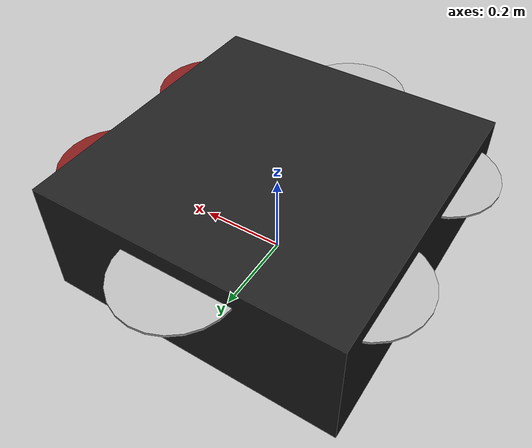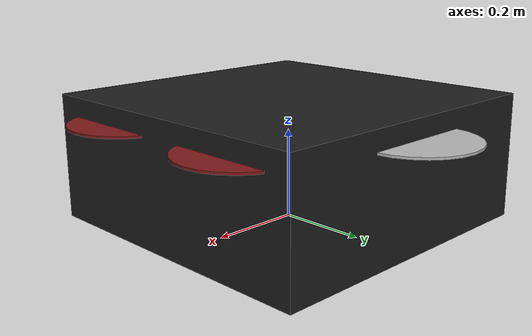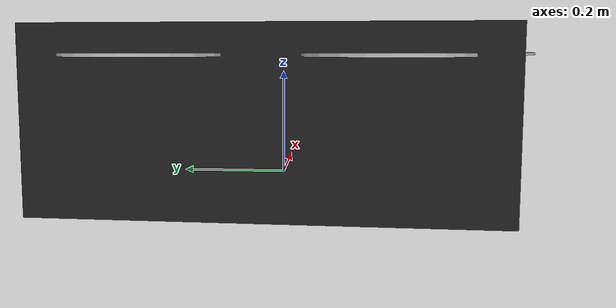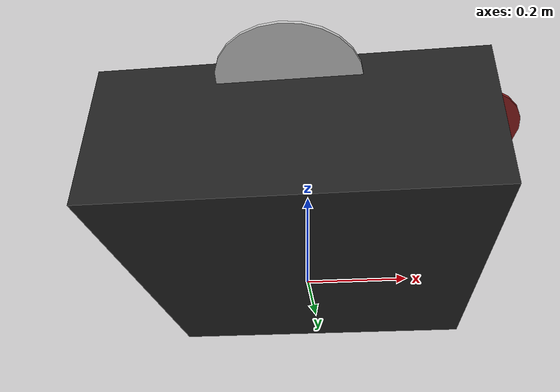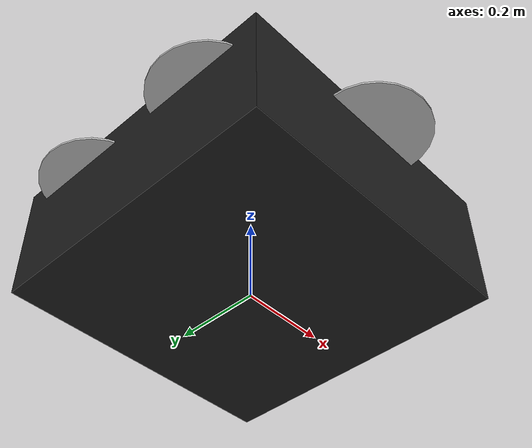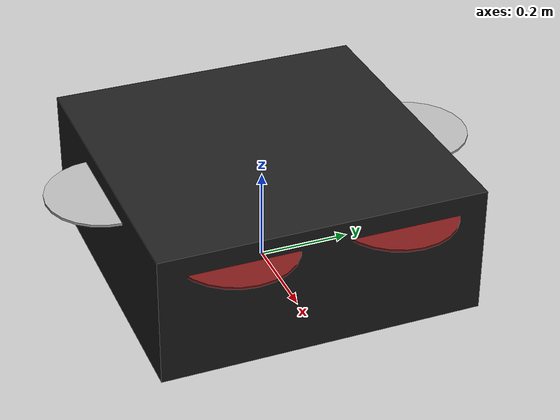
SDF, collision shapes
<?xml version='1.0'?>
<sdf version='1.9'>
  <model name='hexacopter_tarot680'>
    <pose>0 0 0 0 0 0</pose>
    <link name='base_link'>
      <velocity_decay>
          <linear>0.0</linear>
          <angular>0.0</angular>
      </velocity_decay>
      <inertial>
        <pose>0 0 0 0 0 0</pose>
        <mass>2.87</mass>
        <inertia>
          <ixx>0.05319</ixx>
          <ixy>0</ixy>
          <ixz>0</ixz>
          <iyy>0.06388</iyy>
          <iyz>0</iyz>
          <izz>0.02562</izz>
        </inertia>
      </inertial>
      <collision name='base_collision'>
        <pose>0 0 0.14 0 0 0</pose>
        <geometry>
          <box>
            <size>0.695 0.695 0.28</size>
          </box>
        </geometry>
        <surface>
          <contact>
            <ode>
              <max_vel>100.0</max_vel>
              <min_depth>0.001</min_depth>
            </ode>
          </contact>
          <friction>
            <ode>
              <mu>100000.0</mu>
              <mu2>100000.0</mu2>
            </ode>
          </friction>
        </surface>
      </collision>
      <visual name='base_visual'>
        <geometry>
          <mesh>
            <scale>1 1 1</scale>
            <uri>meshes/tarot680.stl</uri>
          </mesh>
        </geometry>
        <material>
          <script>
            <name>Gazebo/Black</name>
            <uri>file://media/materials/scripts/gazebo.material</uri>
          </script>
          <ambient>0 0 0 1</ambient>
          <diffuse>0.15 0.15 0.15 1</diffuse>
          <specular>0.7 0.7 0.7 1</specular>
          <emissive>0 0 0 1</emissive>
        </material>
      </visual>
    </link>
    <link name='imu_link'>
      <inertial>
        <pose>0 0 0 0 0 0</pose>
        <mass>0.15</mass>
        <inertia>
          <ixx>0.00001</ixx>
          <ixy>0</ixy>
          <ixz>0</ixz>
          <iyy>0.00002</iyy>
          <iyz>0</iyz>
          <izz>0.00002</izz>
        </inertia>
      </inertial>
      <sensor name="imu_sensor" type="imu">
        <pose degrees="true">0 0 0 180 0 0</pose>
        <always_on>1</always_on>
        <update_rate>1000.0</update_rate>
      </sensor>
    </link>
    <joint name='imu_joint' type='revolute'>
      <child>imu_link</child>
      <parent>base_link</parent>
      <axis>
        <xyz>0 0 1</xyz>
        <limit>
          <lower>0</lower>
          <upper>0</upper>
          <effort>0</effort>
          <velocity>0</velocity>
        </limit>
        <dynamics>
          <damping>1.0</damping>
        </dynamics>
      </axis>
    </joint>

    <!-- Rotor -->
    <!-- Front Right (CCW) -->
    <link name='rotor_4'>
      <pose>0.2966 -0.1712 0.235 0 0 0</pose>
      <inertial>
        <pose>0 0 0 0 0 0</pose>
        <mass>0.005</mass>
        <inertia>
          <ixx>9.75e-07</ixx>
          <ixy>0</ixy>
          <ixz>0</ixz>
          <iyy>0.000273104</iyy>
          <iyz>0</iyz>
          <izz>0.000274004</izz>
        </inertia>
      </inertial>
      <collision name='rotor_4_collision'>
        <pose>0 0 0 0 0 0</pose>
        <geometry>
          <cylinder>
            <length>0.005</length>
            <radius>0.128</radius>
          </cylinder>
        </geometry>
        <surface>
          <contact>
            <ode/>
          </contact>
          <friction>
            <ode/>
          </friction>
        </surface>
      </collision>
      <visual name='rotor_4_visual'>
        <pose>0 0 0 0 0 0</pose>
        <geometry>
          <mesh>
            <scale>1 1 1</scale>
            <uri>meshes/1340_ccw.dae</uri>
          </mesh>
        </geometry>
        <material>
          <ambient>0 0 0 1</ambient>
          <diffuse>0.5 0.1 0.1 1</diffuse>
          <specular>1 0.6 0.6 1</specular>
          <emissive>0.5 0 0 1</emissive>
        </material>
      </visual>
      <gravity>1</gravity>
      <velocity_decay/>
      <self_collide>0</self_collide>
    </link>
    <joint name='rotor_4_joint' type='revolute'>
      <child>rotor_4</child>
      <parent>base_link</parent>
      <axis>
        <xyz>0 0 1</xyz>
        <limit>
          <lower>-1e+16</lower>
          <upper>1e+16</upper>
        </limit>
        <dynamics>
          <damping>0.004</damping>
        </dynamics>
      </axis>
      <physics>
        <ode>
          <implicit_spring_damper>1</implicit_spring_damper>
        </ode>
      </physics>
    </joint>

    <!-- Front Left (CW) -->
    <link name='rotor_2'>
      <pose>0.2966 0.1712 0.235 0 0 0</pose>
      <inertial>
        <pose>0 0 0 0 0 0</pose>
        <mass>0.005</mass>
        <inertia>
          <ixx>9.75e-07</ixx>
          <ixy>0</ixy>
          <ixz>0</ixz>
          <iyy>0.000273104</iyy>
          <iyz>0</iyz>
          <izz>0.000274004</izz>
        </inertia>
      </inertial>
      <collision name='rotor_2_collision'>
        <pose>0 0 0 0 0 0</pose>
        <geometry>
          <cylinder>
            <length>0.005</length>
            <radius>0.128</radius>
          </cylinder>
        </geometry>
        <surface>
          <contact>
            <ode/>
          </contact>
          <friction>
            <ode/>
          </friction>
        </surface>
      </collision>
      <visual name='rotor_2_visual'>
        <pose>0 0 0 0 0 0</pose>
        <geometry>
          <mesh>
            <scale>1 1 1</scale>
            <uri>meshes/1340_cw.dae</uri>
          </mesh>
        </geometry>
        <material>
          <ambient>0 0 0 1</ambient>
          <diffuse>0.5 0.1 0.1 1</diffuse>
          <specular>1 0.6 0.6 1</specular>
          <emissive>0.5 0 0 1</emissive>
        </material>
      </visual>
      <gravity>1</gravity>
      <velocity_decay/>
      <self_collide>0</self_collide>
    </link>
    <joint name='rotor_2_joint' type='revolute'>
      <child>rotor_2</child>
      <parent>base_link</parent>
      <axis>
        <xyz>0 0 1</xyz>
        <limit>
          <lower>-1e+16</lower>
          <upper>1e+16</upper>
        </limit>
        <dynamics>
          <damping>0.004</damping>
        </dynamics>
      </axis>
      <physics>
        <ode>
          <implicit_spring_damper>1</implicit_spring_damper>
        </ode>
      </physics>
    </joint>

    <!-- Back Right (CCW) -->
    <link name='rotor_3'>
      <pose>-0.2966 -0.1712 0.235 0 0 0</pose>
      <inertial>
        <pose>0 0 0 0 0 0</pose>
        <mass>0.005</mass>
        <inertia>
          <ixx>9.75e-07</ixx>
          <ixy>0</ixy>
          <ixz>0</ixz>
          <iyy>0.000273104</iyy>
          <iyz>0</iyz>
          <izz>0.000274004</izz>
        </inertia>
      </inertial>
      <collision name='rotor_3_collision'>
        <pose>0 0 0 0 0 0</pose>
        <geometry>
          <cylinder>
            <length>0.005</length>
            <radius>0.128</radius>
          </cylinder>
        </geometry>
        <surface>
          <contact>
            <ode/>
          </contact>
          <friction>
            <ode/>
          </friction>
        </surface>
      </collision>
      <visual name='rotor_3_visual'>
        <pose>0 0 0.0 0 0 0</pose>
        <geometry>
          <mesh>
            <scale>1 1 1</scale>
            <uri>meshes/1340_ccw.dae</uri>
          </mesh>
        </geometry>
      </visual>
      <gravity>1</gravity>
      <velocity_decay/>
      <self_collide>0</self_collide>
    </link>
    <joint name='rotor_3_joint' type='revolute'>
      <child>rotor_3</child>
      <parent>base_link</parent>
      <axis>
        <xyz>0 0 1</xyz>
        <limit>
          <lower>-1e+16</lower>
          <upper>1e+16</upper>
        </limit>
        <dynamics>
          <damping>0.004</damping>
        </dynamics>
      </axis>
      <physics>
        <ode>
          <implicit_spring_damper>1</implicit_spring_damper>
        </ode>
      </physics>
    </joint>

    <!-- Middle Right (CW) -->
    <link name='rotor_0'>
      <pose>0 -0.3425 0.235 0 0 0</pose>
      <inertial>
        <pose>0 0 0 0 0 0</pose>
        <mass>0.005</mass>
        <inertia>
          <ixx>9.75e-07</ixx>
          <ixy>0</ixy>
          <ixz>0</ixz>
          <iyy>0.000273104</iyy>
          <iyz>0</iyz>
          <izz>0.000274004</izz>
        </inertia>
      </inertial>
      <collision name='rotor_0_collision'>
        <pose>0 0 0 0 0 0</pose>
        <geometry>
          <cylinder>
            <length>0.005</length>
            <radius>0.128</radius>
          </cylinder>
        </geometry>
        <surface>
          <contact>
            <ode/>
          </contact>
          <friction>
            <ode/>
          </friction>
        </surface>
      </collision>
      <visual name='rotor_0_visual'>
        <pose>0 0 0 0 0 0</pose>
        <geometry>
          <mesh>
            <scale>1 1 1</scale>
            <uri>meshes/1340_cw.dae</uri>
          </mesh>
        </geometry>
      </visual>
      <gravity>1</gravity>
      <velocity_decay/>
      <self_collide>0</self_collide>
    </link>
    <joint name='rotor_0_joint' type='revolute'>
      <child>rotor_0</child>
      <parent>base_link</parent>
      <axis>
        <xyz>0 0 1</xyz>
        <limit>
          <lower>-1e+16</lower>
          <upper>1e+16</upper>
        </limit>
        <dynamics>
          <damping>0.004</damping>
        </dynamics>
      </axis>
      <physics>
        <ode>
          <implicit_spring_damper>1</implicit_spring_damper>
        </ode>
      </physics>
    </joint>

    <!-- Middle Left (CCW) -->
    <link name='rotor_1'>
      <pose>0 0.3425 0.235 0 0 0</pose>
      <inertial>
        <pose>0 0 0 0 0 0</pose>
        <mass>0.005</mass>
        <inertia>
          <ixx>9.75e-07</ixx>
          <ixy>0</ixy>
          <ixz>0</ixz>
          <iyy>0.000273104</iyy>
          <iyz>0</iyz>
          <izz>0.000274004</izz>
        </inertia>
      </inertial>
      <collision name='rotor_1_collision'>
        <pose>0 0 0 0 0 0</pose>
        <geometry>
          <cylinder>
            <length>0.005</length>
            <radius>0.128</radius>
          </cylinder>
        </geometry>
        <surface>
          <contact>
            <ode/>
          </contact>
          <friction>
            <ode/>
          </friction>
        </surface>
      </collision>
      <visual name='rotor_1_visual'>
        <pose>0 0 0 0 0 0</pose>
        <geometry>
          <mesh>
            <scale>1 1 1</scale>
            <uri>meshes/1340_ccw.dae</uri>
          </mesh>
        </geometry>
      </visual>
      <gravity>1</gravity>
      <velocity_decay/>
      <self_collide>0</self_collide>
    </link>
    <joint name='rotor_1_joint' type='revolute'>
      <child>rotor_1</child>
      <parent>base_link</parent>
      <axis>
        <xyz>0 0 1</xyz>
        <limit>
          <lower>-1e+16</lower>
          <upper>1e+16</upper>
        </limit>
        <dynamics>
          <damping>0.004</damping>
        </dynamics>
      </axis>
      <physics>
        <ode>
          <implicit_spring_damper>1</implicit_spring_damper>
        </ode>
      </physics>
    </joint>

    <!-- Back Left (CW) -->
    <link name='rotor_5'>
      <pose>-0.2966 0.1712 0.235 0 0 0</pose>
      <inertial>
        <pose>0 0 0 0 0 0</pose>
        <mass>0.005</mass>
        <inertia>
          <ixx>9.75e-07</ixx>
          <ixy>0</ixy>
          <ixz>0</ixz>
          <iyy>0.000273104</iyy>
          <iyz>0</iyz>
          <izz>0.000274004</izz>
        </inertia>
      </inertial>
      <collision name='rotor_5_collision'>
        <pose>0 0 0 0 0 0</pose>
        <geometry>
          <cylinder>
            <length>0.005</length>
            <radius>0.128</radius>
          </cylinder>
        </geometry>
        <surface>
          <contact>
            <ode/>
          </contact>
          <friction>
            <ode/>
          </friction>
        </surface>
      </collision>
      <visual name='rotor_5_visual'>
        <pose>0 0 0 0 0 0</pose>
        <geometry>
          <mesh>
            <scale>1 1 1</scale>
            <uri>meshes/1340_cw.dae</uri>
          </mesh>
        </geometry>
      </visual>
      <gravity>1</gravity>
      <velocity_decay/>
      <self_collide>0</self_collide>
    </link>
    <joint name='rotor_5_joint' type='revolute'>
      <child>rotor_5</child>
      <parent>base_link</parent>
      <axis>
        <xyz>0 0 1</xyz>
        <limit>
          <lower>-1e+16</lower>
          <upper>1e+16</upper>
        </limit>
        <dynamics>
          <damping>0.004</damping>
        </dynamics>
      </axis>
      <physics>
        <ode>
          <implicit_spring_damper>1</implicit_spring_damper>
        </ode>
      </physics>
    </joint>

    <!-- PLUGINS -->
    <plugin filename="gz-sim-joint-state-publisher-system"
      name="gz::sim::systems::JointStatePublisher">
    </plugin>
    <plugin filename="gz-sim-lift-drag-system"
        name="gz::sim::systems::LiftDrag">
      <a0>0.3</a0>
      <alpha_stall>1.4</alpha_stall>
      <cla>4.2500</cla>
      <cda>0.10</cda>
      <cma>0.0</cma>
      <cla_stall>-0.025</cla_stall>
      <cda_stall>0.0</cda_stall>
      <cma_stall>0.0</cma_stall>
      <area>0.005</area>
      <air_density>1.2041</air_density>
      <cp>0.1 0 0</cp>
      <forward>0 -1 0</forward>
      <upward>0 0 1</upward>
      <link_name>rotor_0</link_name>
    </plugin>
    <plugin filename="gz-sim-lift-drag-system"
        name="gz::sim::systems::LiftDrag">
      <a0>0.3</a0>
      <alpha_stall>1.4</alpha_stall>
      <cla>4.2500</cla>
      <cda>0.10</cda>
      <cma>0.0</cma>
      <cla_stall>-0.025</cla_stall>
      <cda_stall>0.0</cda_stall>
      <cma_stall>0.0</cma_stall>
      <area>0.005</area>
      <air_density>1.2041</air_density>
      <cp>-0.1 0 0</cp>
      <forward>0 1 0</forward>
      <upward>0 0 1</upward>
      <link_name>rotor_0</link_name>
    </plugin>

    <plugin filename="gz-sim-lift-drag-system"
        name="gz::sim::systems::LiftDrag">
      <a0>0.3</a0>
      <alpha_stall>1.4</alpha_stall>
      <cla>4.2500</cla>
      <cda>0.10</cda>
      <cma>0.0</cma>
      <cla_stall>-0.025</cla_stall>
      <cda_stall>0.0</cda_stall>
      <cma_stall>0.0</cma_stall>
      <area>0.005</area>
      <air_density>1.2041</air_density>
      <cp>0.1 0 0</cp>
      <forward>0 1 0</forward>
      <upward>0 0 1</upward>
      <link_name>rotor_1</link_name>
    </plugin>
    <plugin filename="gz-sim-lift-drag-system"
        name="gz::sim::systems::LiftDrag">
      <a0>0.3</a0>
      <alpha_stall>1.4</alpha_stall>
      <cla>4.2500</cla>
      <cda>0.10</cda>
      <cma>0.0</cma>
      <cla_stall>-0.025</cla_stall>
      <cda_stall>0.0</cda_stall>
      <cma_stall>0.0</cma_stall>
      <area>0.005</area>
      <air_density>1.2041</air_density>
      <cp>-0.1 0 0</cp>
      <forward>0 -1 0</forward>
      <upward>0 0 1</upward>
      <link_name>rotor_1</link_name>
    </plugin>

    <plugin filename="gz-sim-lift-drag-system"
        name="gz::sim::systems::LiftDrag">
      <a0>0.3</a0>
      <alpha_stall>1.4</alpha_stall>
      <cla>4.2500</cla>
      <cda>0.10</cda>
      <cma>0.0</cma>
      <cla_stall>-0.025</cla_stall>
      <cda_stall>0.0</cda_stall>
      <cma_stall>0.0</cma_stall>
      <area>0.005</area>
      <air_density>1.2041</air_density>
      <cp>0.1 0 0</cp>
      <forward>0 -1 0</forward>
      <upward>0 0 1</upward>
      <link_name>rotor_2</link_name>
    </plugin>
    <plugin filename="gz-sim-lift-drag-system"
        name="gz::sim::systems::LiftDrag">
      <a0>0.3</a0>
      <alpha_stall>1.4</alpha_stall>
      <cla>4.2500</cla>
      <cda>0.10</cda>
      <cma>0.0</cma>
      <cla_stall>-0.025</cla_stall>
      <cda_stall>0.0</cda_stall>
      <cma_stall>0.0</cma_stall>
      <area>0.005</area>
      <air_density>1.2041</air_density>
      <cp>-0.1 0 0</cp>
      <forward>0 1 0</forward>
      <upward>0 0 1</upward>
      <link_name>rotor_2</link_name>
    </plugin>

    <plugin filename="gz-sim-lift-drag-system"
        name="gz::sim::systems::LiftDrag">
      <a0>0.3</a0>
      <alpha_stall>1.4</alpha_stall>
      <cla>4.2500</cla>
      <cda>0.10</cda>
      <cma>0.0</cma>
      <cla_stall>-0.025</cla_stall>
      <cda_stall>0.0</cda_stall>
      <cma_stall>0.0</cma_stall>
      <area>0.005</area>
      <air_density>1.2041</air_density>
      <cp>0.1 0 0</cp>
      <forward>0 1 0</forward>
      <upward>0 0 1</upward>
      <link_name>rotor_3</link_name>
    </plugin>
    <plugin filename="gz-sim-lift-drag-system"
        name="gz::sim::systems::LiftDrag">
      <a0>0.3</a0>
      <alpha_stall>1.4</alpha_stall>
      <cla>4.2500</cla>
      <cda>0.10</cda>
      <cma>0.0</cma>
      <cla_stall>-0.025</cla_stall>
      <cda_stall>0.0</cda_stall>
      <cma_stall>0.0</cma_stall>
      <area>0.005</area>
      <air_density>1.2041</air_density>
      <cp>-0.1 0 0</cp>
      <forward>0 -1 0</forward>
      <upward>0 0 1</upward>
      <link_name>rotor_3</link_name>
    </plugin>

    <plugin filename="gz-sim-lift-drag-system"
        name="gz::sim::systems::LiftDrag">
      <a0>0.3</a0>
      <alpha_stall>1.4</alpha_stall>
      <cla>4.2500</cla>
      <cda>0.10</cda>
      <cma>0.0</cma>
      <cla_stall>-0.025</cla_stall>
      <cda_stall>0.0</cda_stall>
      <cma_stall>0.0</cma_stall>
      <area>0.005</area>
      <air_density>1.2041</air_density>
      <cp>0.1 0 0</cp>
      <forward>0 1 0</forward>
      <upward>0 0 1</upward>
      <link_name>rotor_4</link_name>
    </plugin>
    <plugin filename="gz-sim-lift-drag-system"
        name="gz::sim::systems::LiftDrag">
      <a0>0.3</a0>
      <alpha_stall>1.4</alpha_stall>
      <cla>4.2500</cla>
      <cda>0.10</cda>
      <cma>0.0</cma>
      <cla_stall>-0.025</cla_stall>
      <cda_stall>0.0</cda_stall>
      <cma_stall>0.0</cma_stall>
      <area>0.005</area>
      <air_density>1.2041</air_density>
      <cp>-0.1 0 0</cp>
      <forward>0 -1 0</forward>
      <upward>0 0 1</upward>
      <link_name>rotor_4</link_name>
    </plugin>

    <plugin filename="gz-sim-lift-drag-system"
        name="gz::sim::systems::LiftDrag">
      <a0>0.3</a0>
      <alpha_stall>1.4</alpha_stall>
      <cla>4.2500</cla>
      <cda>0.10</cda>
      <cma>0.0</cma>
      <cla_stall>-0.025</cla_stall>
      <cda_stall>0.0</cda_stall>
      <cma_stall>0.0</cma_stall>
      <area>0.005</area>
      <air_density>1.2041</air_density>
      <cp>0.1 0 0</cp>
      <forward>0 -1 0</forward>
      <upward>0 0 1</upward>
      <link_name>rotor_5</link_name>
    </plugin>
    <plugin filename="gz-sim-lift-drag-system"
        name="gz::sim::systems::LiftDrag">
      <a0>0.3</a0>
      <alpha_stall>1.4</alpha_stall>
      <cla>4.2500</cla>
      <cda>0.10</cda>
      <cma>0.0</cma>
      <cla_stall>-0.025</cla_stall>
      <cda_stall>0.0</cda_stall>
      <cma_stall>0.0</cma_stall>
      <area>0.005</area>
      <air_density>1.2041</air_density>
      <cp>-0.1 0 0</cp>
      <forward>0 1 0</forward>
      <upward>0 0 1</upward>
      <link_name>rotor_5</link_name>
    </plugin>

    <plugin filename="gz-sim-apply-joint-force-system"
      name="gz::sim::systems::ApplyJointForce">
      <joint_name>rotor_0_joint</joint_name>
    </plugin>
    <plugin filename="gz-sim-apply-joint-force-system"
      name="gz::sim::systems::ApplyJointForce">
      <joint_name>rotor_1_joint</joint_name>
    </plugin>
    <plugin filename="gz-sim-apply-joint-force-system"
      name="gz::sim::systems::ApplyJointForce">
      <joint_name>rotor_2_joint</joint_name>
    </plugin>
    <plugin filename="gz-sim-apply-joint-force-system"
      name="gz::sim::systems::ApplyJointForce">
      <joint_name>rotor_3_joint</joint_name>
    </plugin>
    <plugin filename="gz-sim-apply-joint-force-system"
      name="gz::sim::systems::ApplyJointForce">
      <joint_name>rotor_4_joint</joint_name>
    </plugin>
    <plugin filename="gz-sim-apply-joint-force-system"
      name="gz::sim::systems::ApplyJointForce">
      <joint_name>rotor_5_joint</joint_name>
    </plugin>

      <plugin name="ArduPilotPlugin"
      filename="ArduPilotPlugin">
      <!-- Port settings -->
      <fdm_addr>127.0.0.1</fdm_addr>
      <fdm_port_in>9002</fdm_port_in>
      <connectionTimeoutMaxCount>5</connectionTimeoutMaxCount>
      <lock_step>1</lock_step>

      <!-- Frame conventions
        Require by ArduPilot: change model and gazebo from XYZ to XY-Z coordinates
      -->
      <modelXYZToAirplaneXForwardZDown degrees="true">0 0 0 180 0 0</modelXYZToAirplaneXForwardZDown>
      <gazeboXYZToNED degrees="true">0 0 0 180 0 90</gazeboXYZToNED>

      <!-- Sensors -->
      <imuName>imu_link::imu_sensor</imuName>

      <!--
          incoming control command [0, 1]
          so offset it by 0 to get [0, 1]
          and divide max target by 1.
          offset = 0
          multiplier = 1000 max rpm / 1 = 1000
        -->
      <control channel="0">
        <jointName>rotor_0_joint</jointName>
        <useForce>1</useForce>
        <multiplier>-600</multiplier>
        <offset>0</offset>
        <servo_min>1100</servo_min>
        <servo_max>1900</servo_max>
        <type>VELOCITY</type>
        <p_gain>0.20</p_gain>
        <i_gain>0</i_gain>
        <d_gain>0</d_gain>
        <i_max>0</i_max>
        <i_min>0</i_min>
        <cmd_max>2.5</cmd_max>
        <cmd_min>-2.5</cmd_min>
        <controlVelocitySlowdownSim>1</controlVelocitySlowdownSim>
      </control>

      <control channel="1">
        <jointName>rotor_1_joint</jointName>
        <useForce>1</useForce>
        <multiplier>600</multiplier>
        <offset>0</offset>
        <servo_min>1100</servo_min>
        <servo_max>1900</servo_max>
        <type>VELOCITY</type>
        <p_gain>0.20</p_gain>
        <i_gain>0</i_gain>
        <d_gain>0</d_gain>
        <i_max>0</i_max>
        <i_min>0</i_min>
        <cmd_max>2.5</cmd_max>
        <cmd_min>-2.5</cmd_min>
        <controlVelocitySlowdownSim>1</controlVelocitySlowdownSim>
      </control>

      <control channel="2">
        <jointName>rotor_2_joint</jointName>
        <useForce>1</useForce>
        <multiplier>-600</multiplier>
        <offset>0</offset>
        <servo_min>1100</servo_min>
        <servo_max>1900</servo_max>
        <type>VELOCITY</type>
        <p_gain>0.20</p_gain>
        <i_gain>0</i_gain>
        <d_gain>0</d_gain>
        <i_max>0</i_max>
        <i_min>0</i_min>
        <cmd_max>2.5</cmd_max>
        <cmd_min>-2.5</cmd_min>
        <controlVelocitySlowdownSim>1</controlVelocitySlowdownSim>
      </control>

      <control channel="3">
        <jointName>rotor_3_joint</jointName>
        <useForce>1</useForce>
        <multiplier>600</multiplier>
        <offset>0</offset>
        <servo_min>1100</servo_min>
        <servo_max>1900</servo_max>
        <type>VELOCITY</type>
        <p_gain>0.20</p_gain>
        <i_gain>0</i_gain>
        <d_gain>0</d_gain>
        <i_max>0</i_max>
        <i_min>0</i_min>
        <cmd_max>2.5</cmd_max>
        <cmd_min>-2.5</cmd_min>
        <controlVelocitySlowdownSim>1</controlVelocitySlowdownSim>
      </control>

      <control channel="4">
        <jointName>rotor_4_joint</jointName>
        <useForce>1</useForce>
        <multiplier>600</multiplier>
        <offset>0</offset>
        <servo_min>1100</servo_min>
        <servo_max>1900</servo_max>
        <type>VELOCITY</type>
        <p_gain>0.20</p_gain>
        <i_gain>0</i_gain>
        <d_gain>0</d_gain>
        <i_max>0</i_max>
        <i_min>0</i_min>
        <cmd_max>2.5</cmd_max>
        <cmd_min>-2.5</cmd_min>
        <controlVelocitySlowdownSim>1</controlVelocitySlowdownSim>
      </control>

      <control channel="5">
        <jointName>rotor_5_joint</jointName>
        <useForce>1</useForce>
        <multiplier>-600</multiplier>
        <offset>0</offset>
        <servo_min>1100</servo_min>
        <servo_max>1900</servo_max>
        <type>VELOCITY</type>
        <p_gain>0.20</p_gain>
        <i_gain>0</i_gain>
        <d_gain>0</d_gain>
        <i_max>0</i_max>
        <i_min>0</i_min>
        <cmd_max>2.5</cmd_max>
        <cmd_min>-2.5</cmd_min>
        <controlVelocitySlowdownSim>1</controlVelocitySlowdownSim>
      </control>
    </plugin>

    <link name="camera_link">
      <pose>0 0 0 0 0 0</pose>
      <inertial>
        <pose>0 0 0 0 0 0</pose>
        <mass>0.001</mass>
        <inertia>
          <ixx>1e-6</ixx>
          <iyy>1e-6</iyy>
          <izz>1e-6</izz>
          <ixy>0</ixy>
          <ixz>0</ixz>
          <iyz>0</iyz>
        </inertia>
      </inertial>
      <sensor name="downward_camera" type="camera">
        <pose>0 0 0.2 0 1.5708 0</pose>
        <camera>
          <horizontal_fov>1.57</horizontal_fov>
          <image>
            <width>640</width>
            <height>480</height>
          </image>
          <clip>
            <near>0.05</near>
            <far>100</far>
          </clip>
        </camera>
        <always_on>1</always_on>
        <update_rate>30</update_rate>
        <visualize>true</visualize>
      </sensor>
    </link>

    <joint name="camera_joint" type="fixed">
      <parent>base_link</parent>
      <child>camera_link</child>
      <pose>0 0 0 0 0 0</pose>
    </joint>

  </model>
</sdf>
